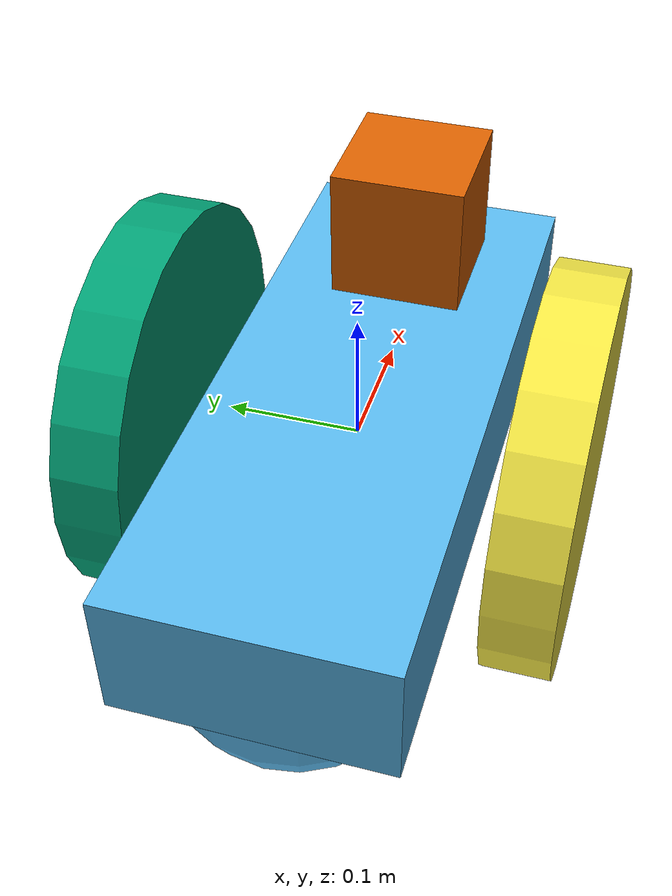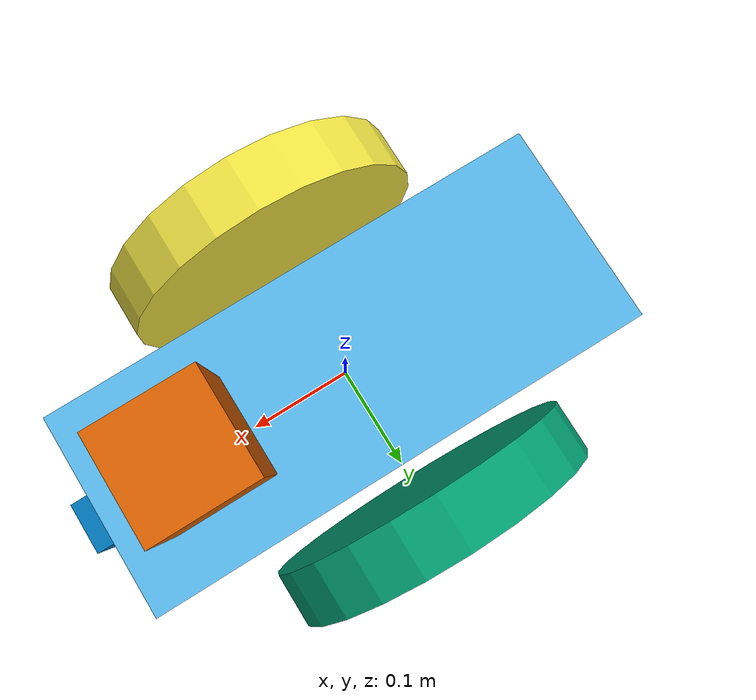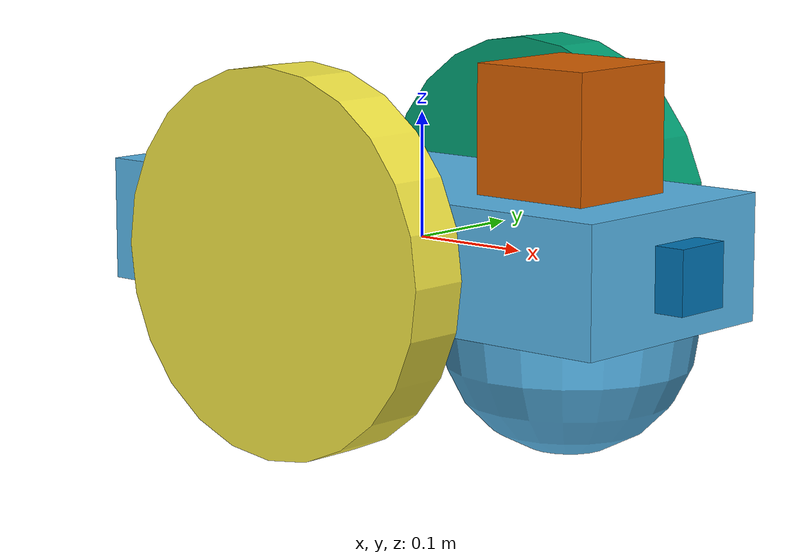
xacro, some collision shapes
<?xml version='1.0'?>

<robot name="my_robot" xmlns:xacro="http://www.ros.org/wiki/xacro">
<xacro:include filename="$(find my_robot)/urdf/my_robot.gazebo" />

  <link name="robot_footprint"></link>

  <joint name="robot_footprint_joint" type="fixed">
    <origin xyz="0 0 0" rpy="0 0 0" />
    <parent link="robot_footprint"/>
    <child link="chassis" />
  </joint>

  <link name='chassis'>
    <pose>0 0 0.1 0 0 0</pose>

    <inertial>
      <mass value="15.0"/>
      <origin xyz="0.0 0 0" rpy=" 0 0 0"/>
      <inertia
          ixx="0.1" ixy="0" ixz="0"
          iyy="0.1" iyz="0"
          izz="0.1"
      />
    </inertial>

    <collision name='collision'>
      <origin xyz="0 0 0" rpy=" 0 0 0"/>
      <geometry>
        <box size=".5 .2 .1"/>
      </geometry>
    </collision>

    <visual name='chassis_visual'>
      <origin xyz="0 0 0" rpy=" 0 0 0"/>
      <geometry>
        <box size=".5 .2 .1"/>
      </geometry>
        <material name="chassis_material">
          <lighting>1</lighting>
          <script>
            <uri>file://media/materials/scripts/gazebo.material</uri>
            <name>Gazebo/GreenGlow</name>
          </script>
          <ambient>0.3 0.3 0.3 1</ambient>
          <diffuse>0.7 0.7 0.7 1</diffuse>
          <specular>0.01 0.01 0.01 1</specular>
          <emissive>0 0 0 1</emissive>
          <shader type='vertex'>
            <normal_map>__default__</normal_map>
          </shader>
        </material>
    </visual>

    <collision name='back_caster_collision'>
      <origin xyz="-0.15 0 -0.05" rpy=" 0 0 0"/>
      <geometry>
        <sphere radius="0.0999"/>
      </geometry>
    </collision>

    <visual name='back_caster_visual'>
      <origin xyz="-0.15 0 -0.05" rpy=" 0 0 0"/>
      <geometry>
        <sphere radius="0.10"/>
      </geometry>
    </visual>

    <collision name='front_caster_collision'>
      <origin xyz="0.15 0 -0.05" rpy=" 0 0 0"/>
      <geometry>
        <sphere radius="0.0999"/>
      </geometry>
    </collision>

    <visual name='front_caster_visual'>
      <origin xyz="0.15 0 -0.05" rpy=" 0 0 0"/>
      <geometry>
        <sphere radius="0.10"/>
      </geometry>
    </visual>

  </link>

  <link name='left_wheel'>
		<inertial>
      <mass value="5.0"/>
      <origin xyz="0.0 0 0" rpy=" 0 1.5707 1.5707"/>
      <inertia
          ixx="0.1" ixy="0" ixz="0"
          iyy="0.1" iyz="0"
          izz="0.1"
      />
    </inertial>

  	<collision name='left_wheel_collision'>
			<origin xyz="0.0 0 0" rpy=" 0 1.5707 1.5707"/>
			<geometry>
				<cylinder radius="0.15" length="0.05"/>
			</geometry>
		</collision>

		<visual name='left_wheel_visual'>
			<origin xyz="0.0 0 0" rpy=" 0 1.5707 1.5707"/>
			<geometry>
				<cylinder radius="0.15" length="0.05"/>
			</geometry>
		</visual>

  </link>

	<link name='right_wheel'>
		<inertial>
      <mass value="5.0"/>
      <origin xyz="0.0 -.15 0" rpy=" 0 1.5707 1.5707"/>
      <inertia
          ixx="0.1" ixy="0" ixz="0"
          iyy="0.1" iyz="0"
          izz="0.1"
      />
    </inertial>

  	<collision name='right_wheel_collision'>
			<origin xyz="0.0 -.15 0" rpy=" 0 1.5707 1.5707"/>
			<geometry>
				<cylinder radius="0.15" length="0.05"/>
			</geometry>
		</collision>

		<visual name='right_wheel_visual'>
			<origin xyz="0.0 -.15 0" rpy=" 0 1.5707 1.5707"/>
			<geometry>
				<cylinder radius="0.15" length="0.05"/>
			</geometry>
		</visual>

  </link>

	<joint type="continuous" name="left_wheel_hinge">
    <origin xyz="0 0.15 0" rpy="0 0 0"/>
    <child link="left_wheel"/>
    <parent link="chassis"/>
    <axis xyz="0 1 0" rpy="0 0 0"/>
    <limit effort="10000" velocity="1000"/>
    <dynamics damping="1.0" friction="1.0"/>
  </joint>

	<joint type="continuous" name="right_wheel_hinge">
    <origin xyz="0 0.0 0" rpy="0 0 0"/>
    <child link="right_wheel"/>
    <parent link="chassis"/>
    <axis xyz="0 1 0" rpy="0 0 0"/>
    <limit effort="10000" velocity="1000"/>
    <dynamics damping="1.0" friction="1.0"/>
  </joint>

	<link name='camera'>
		<inertial>
			<mass value="5.0"/>
			<origin xyz="0 0 0" rpy="0 0 0"/>
			<inertia
					 ixx="1e-6" ixy="0" ixz="0" iyy="1e-6" iyz="0" izz="1e-6"
			/>
		</inertial>

		<visual name='camera_visual'>
			<origin xyz="0 0 0" rpy="0 0 0"/>
			<geometry>
				<box size=".05 .05 .05"/>
			</geometry>
		</visual>

		<collision name='camera_collision'>
			<origin xyz="0 0 0" rpy="0 0 0"/>
			<geometry>
				<box size=".05 .05 .05"/>
			</geometry>
		</collision>

	</link>

	<joint type='continuous' name='camera_joint'>
		<origin xyz="0.25 0 0" rpy="0 0 0"/>
		<child link='camera'/>
		<parent link='chassis'/>
		<axis xyz="0 1 0 " rpy="0 0 0"/>
	</joint>

	<link name='hokuyo'>
		<inertial>
			<origin xyz="0 0 0" rpy="0 0 0"/>
			<mass value="1e-5"/>
			<inertia ixx="1e-6" ixy="0" ixz="0" iyy="1e-6" iyz="0" izz="1e-6" />
		</inertial>

		<visual name='hokuyo_visual'>
			<origin xyz="0 0 0" rpy="0 0 0"/>
			<geometry>
			 <mesh filename="package://my_robot/meshes/hokuyo.dae"/>
			</geometry>
		</visual>

		<collision name='hokuyo_collision'>
			<origin xyz="0 0 0" rpy="0 0 0"/>
			<geometry>
				<box size=".1 .1 .1"/>
			</geometry>
		</collision>

	</link>

	<joint type="fixed" name='hokuyo_joint'>
		<axis xyz="0 1 0" rpy="0 0 0"/>
		<origin xyz="0.15 0 0.1" rpy="0 0 0"/>
		<child link="hokuyo"/>
		<parent link="chassis"/>
	</joint>
</robot>
